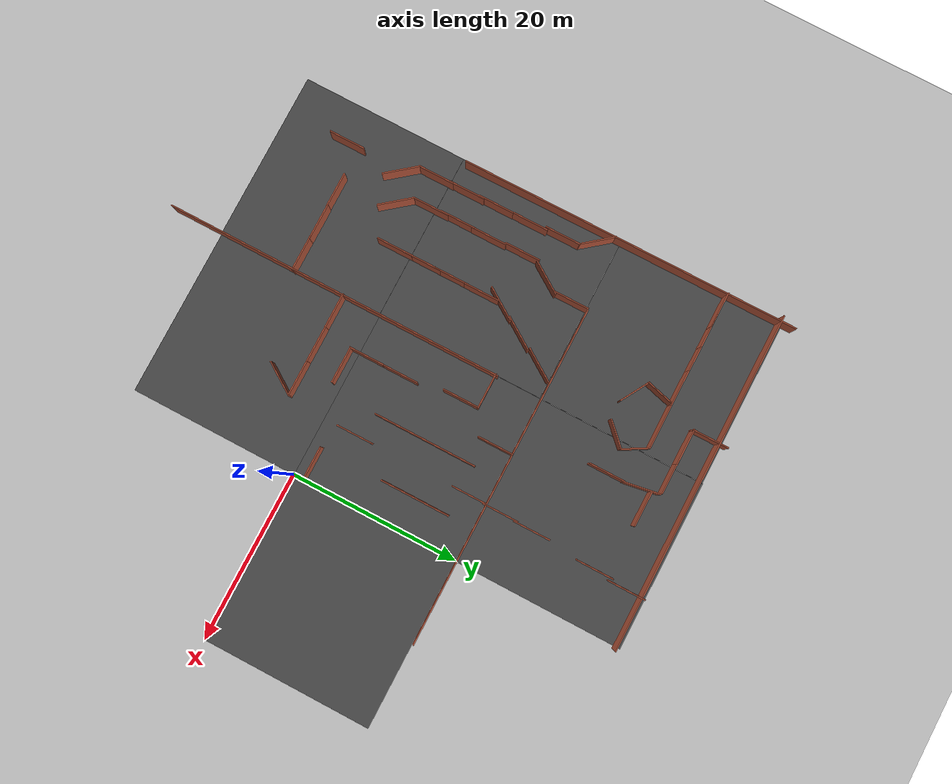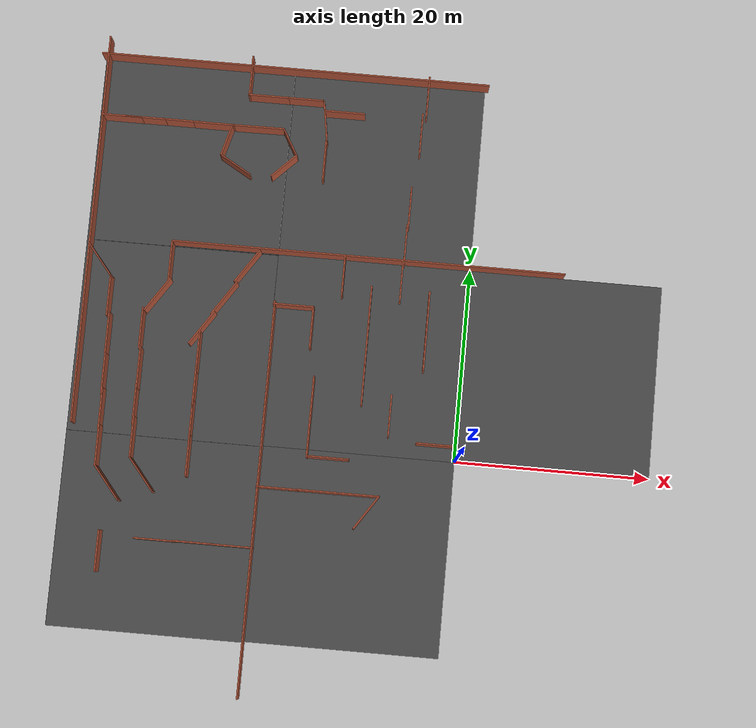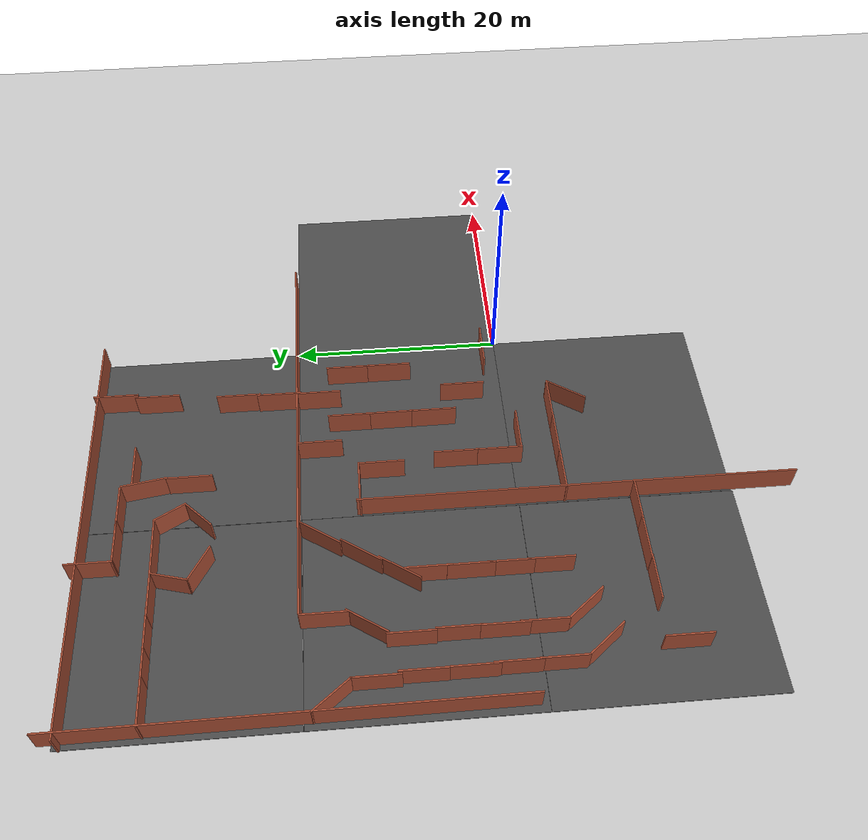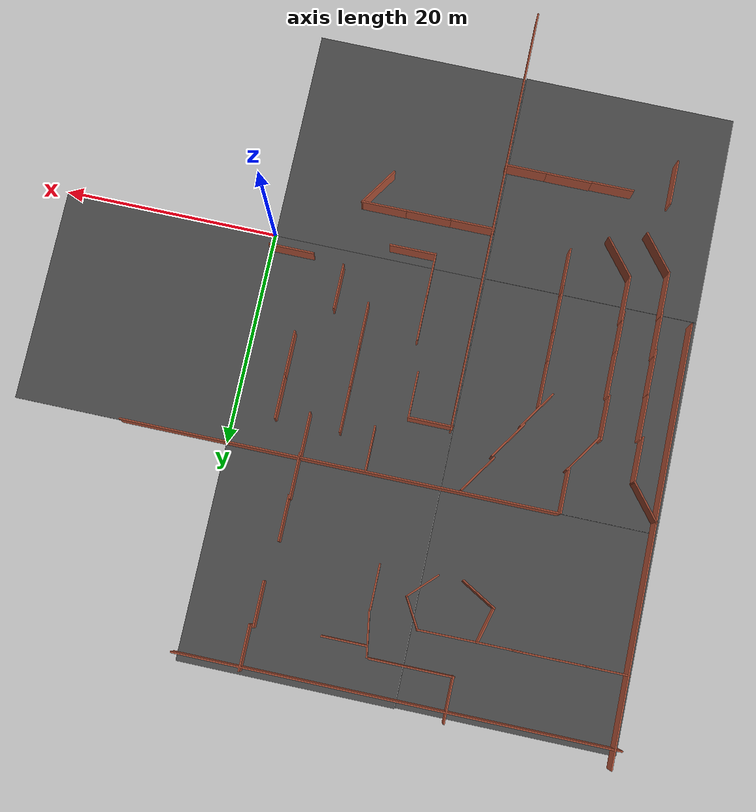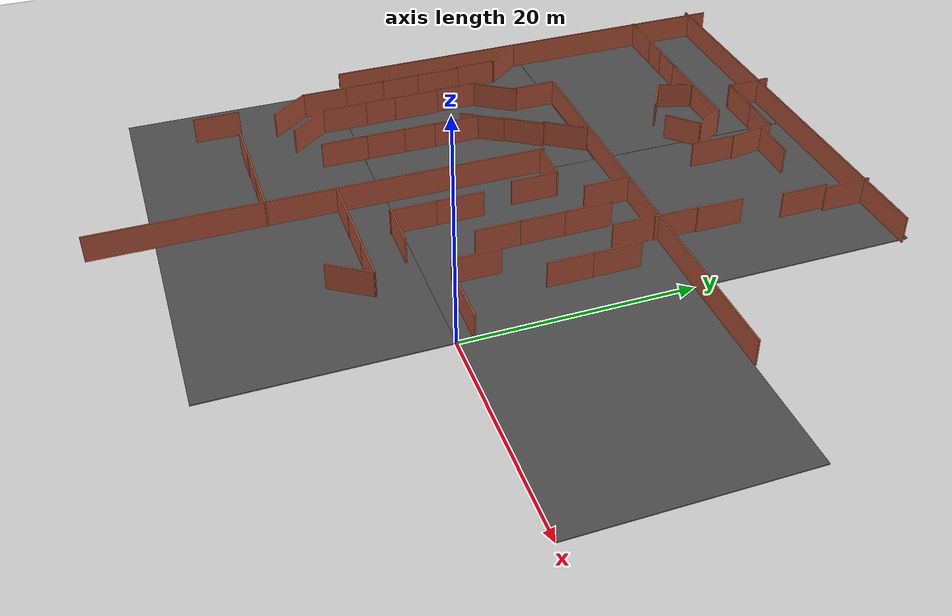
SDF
<sdf version="1.6">
 <world name="default">
  <model name="ground_plane">
   <static>1</static>
   <link name="link">
    <collision name="collision">
     <geometry><plane><normal>0 0 1</normal><size>100 100</size></plane></geometry>
     <surface><friction><ode><mu>100</mu><mu2>50</mu2></ode></friction></surface>
    </collision>
    <visual name="visual">
     <cast_shadows>0</cast_shadows>
     <geometry><plane><normal>0 0 1</normal><size>100 100</size></plane></geometry>
     <material>
      <script><uri>file://media/materials/scripts/gazebo.material</uri><name>Gazebo/Grey</name></script>
     </material>
    </visual>
   </link>
  </model>
  <model name="asphalt_plane">
   <static>1</static>
   <link name="link">
    <collision name="collision"><geometry><box><size>20 20 0.1</size></box></geometry></collision>
    <visual name="visual">
     <cast_shadows>0</cast_shadows>
     <geometry><box><size>20 20 0.1</size></box></geometry>
     <material>
      <script>
       <uri>model://asphalt_plane/materials/scripts</uri>
       <uri>model://asphalt_plane/materials/textures</uri>
       <name>vrc/asphalt</name>
      </script>
     </material>
    </visual>
   </link>
   <pose>10 10 0 0 -0 0</pose>
  </model>
  <model name="asphalt_plane_0">
   <static>1</static>
   <link name="link">
    <collision name="collision"><geometry><box><size>20 20 0.1</size></box></geometry></collision>
    <visual name="visual">
     <cast_shadows>0</cast_shadows>
     <geometry><box><size>20 20 0.1</size></box></geometry>
     <material>
      <script>
       <uri>model://asphalt_plane/materials/scripts</uri>
       <uri>model://asphalt_plane/materials/textures</uri>
       <name>vrc/asphalt</name>
      </script>
     </material>
    </visual>
   </link>
   <pose>-10 10 0 0 -0 0</pose>
  </model>
  <model name="asphalt_plane_1">
   <static>1</static>
   <link name="link">
    <collision name="collision"><geometry><box><size>20 20 0.1</size></box></geometry></collision>
    <visual name="visual">
     <cast_shadows>0</cast_shadows>
     <geometry><box><size>20 20 0.1</size></box></geometry>
     <material>
      <script>
       <uri>model://asphalt_plane/materials/scripts</uri>
       <uri>model://asphalt_plane/materials/textures</uri>
       <name>vrc/asphalt</name>
      </script>
     </material>
    </visual>
   </link>
   <pose>-10 -10 0 0 -0 0</pose>
  </model>
  <model name="longwall_clone">
   <pose>-10.5339 20.0862 0 0 -0 0</pose>
   <link name="Wall_0">
    <collision name="Wall_0_Collision">
     <geometry><box><size>40.5 0.15 2.5</size></box></geometry>
     <pose>0 0 1.25 0 -0 0</pose>
    </collision>
    <visual name="Wall_0_Visual">
     <pose>0 0 1.25 0 -0 0</pose>
     <geometry><box><size>40.5 0.15 2.5</size></box></geometry>
     <material>
      <script><uri>file://media/materials/scripts/gazebo.material</uri><name>Gazebo/Bricks</name></script>
      <ambient>1 1 1 1</ambient>
     </material>
    </visual>
    <pose>1e-06 0 0 0 -0 0</pose>
   </link>
   <static>1</static>
  </model>
  <model name="worlds_1_clone_0_clone_clone_0_clone">
   <pose>-17.8162 14.4688 0 0 0 -1.57092</pose>
   <link name="Wall_0">
    <collision name="Wall_0_Collision">
     <geometry><box><size>4.25 0.15 2.5</size></box></geometry>
     <pose>0 0 1.25 0 -0 0</pose>
    </collision>
    <visual name="Wall_0_Visual">
     <pose>0 0 1.25 0 -0 0</pose>
     <geometry><box><size>4.25 0.15 2.5</size></box></geometry>
     <material>
      <script><uri>file://media/materials/scripts/gazebo.material</uri><name>Gazebo/Bricks</name></script>
      <ambient>1 1 1 1</ambient>
     </material>
    </visual>
    <pose>0 -0 0 0 -0 1.5708</pose>
   </link>
   <static>1</static>
  </model>
  <model name="worlds_1_clone_1">
   <pose>-13 18 0 0 -0 0</pose>
   <link name="Wall_0">
    <collision name="Wall_0_Collision">
     <geometry><box><size>4.25 0.15 2.5</size></box></geometry>
     <pose>0 0 1.25 0 -0 0</pose>
    </collision>
    <visual name="Wall_0_Visual">
     <pose>0 0 1.25 0 -0 0</pose>
     <geometry><box><size>4.25 0.15 2.5</size></box></geometry>
     <material>
      <script><uri>file://media/materials/scripts/gazebo.material</uri><name>Gazebo/Bricks</name></script>
      <ambient>1 1 1 1</ambient>
     </material>
    </visual>
    <pose>0 -0 0 0 -0 1.5708</pose>
   </link>
   <static>1</static>
  </model>
  <model name="worlds_1_clone_1_clone">
   <pose>-15.7734 12.3225 0 0 -0 0</pose>
   <link name="Wall_0">
    <collision name="Wall_0_Collision">
     <geometry><box><size>4.25 0.15 2.5</size></box></geometry>
     <pose>0 0 1.25 0 -0 0</pose>
    </collision>
    <visual name="Wall_0_Visual">
     <pose>0 0 1.25 0 -0 0</pose>
     <geometry><box><size>4.25 0.15 2.5</size></box></geometry>
     <material>
      <script><uri>file://media/materials/scripts/gazebo.material</uri><name>Gazebo/Bricks</name></script>
      <ambient>1 1 1 1</ambient>
     </material>
    </visual>
    <pose>0 -0 0 0 -0 1.5708</pose>
   </link>
   <static>1</static>
  </model>
  <model name="worlds_1_clone_1_clone_clone">
   <pose>-15.0638 5.287 0 0 -0 0</pose>
   <link name="Wall_0">
    <collision name="Wall_0_Collision">
     <geometry><box><size>4.25 0.15 2.5</size></box></geometry>
     <pose>0 0 1.25 0 -0 0</pose>
    </collision>
    <visual name="Wall_0_Visual">
     <pose>0 0 1.25 0 -0 0</pose>
     <geometry><box><size>4.25 0.15 2.5</size></box></geometry>
     <material>
      <script><uri>file://media/materials/scripts/gazebo.material</uri><name>Gazebo/Bricks</name></script>
      <ambient>1 1 1 1</ambient>
     </material>
    </visual>
    <pose>0 -0 0 0 -0 1.5708</pose>
   </link>
   <static>1</static>
  </model>
  <model name="worlds_1_clone_1_clone_clone_0">
   <pose>-15.0769 1.18275 0 0 -0 0</pose>
   <link name="Wall_0">
    <collision name="Wall_0_Collision">
     <geometry><box><size>4.25 0.15 2.5</size></box></geometry>
     <pose>0 0 1.25 0 -0 0</pose>
    </collision>
    <visual name="Wall_0_Visual">
     <pose>0 0 1.25 0 -0 0</pose>
     <geometry><box><size>4.25 0.15 2.5</size></box></geometry>
     <material>
      <script><uri>file://media/materials/scripts/gazebo.material</uri><name>Gazebo/Bricks</name></script>
      <ambient>1 1 1 1</ambient>
     </material>
    </visual>
    <pose>0 -0 0 0 -0 1.5708</pose>
   </link>
   <static>1</static>
  </model>
  <model name="worlds_1_clone_0_clone_clone_0_clone_clone">
   <pose>-17.8054 -4.32089 0 0 0 -1.57092</pose>
   <link name="Wall_0">
    <collision name="Wall_0_Collision">
     <geometry><box><size>4.25 0.15 2.5</size></box></geometry>
     <pose>0 0 1.25 0 -0 0</pose>
    </collision>
    <visual name="Wall_0_Visual">
     <pose>0 0 1.25 0 -0 0</pose>
     <geometry><box><size>4.25 0.15 2.5</size></box></geometry>
     <material>
      <script><uri>file://media/materials/scripts/gazebo.material</uri><name>Gazebo/Bricks</name></script>
      <ambient>1 1 1 1</ambient>
     </material>
    </visual>
    <pose>0 -0 0 0 -0 1.5708</pose>
   </link>
   <static>1</static>
  </model>
  <model name="worlds_1_clone_0_clone_clone_0_clone_clone_0">
   <pose>-13.6699 -4.29855 0 0 0 -1.57092</pose>
   <link name="Wall_0">
    <collision name="Wall_0_Collision">
     <geometry><box><size>4.25 0.15 2.5</size></box></geometry>
     <pose>0 0 1.25 0 -0 0</pose>
    </collision>
    <visual name="Wall_0_Visual">
     <pose>0 0 1.25 0 -0 0</pose>
     <geometry><box><size>4.25 0.15 2.5</size></box></geometry>
     <material>
      <script><uri>file://media/materials/scripts/gazebo.material</uri><name>Gazebo/Bricks</name></script>
      <ambient>1 1 1 1</ambient>
     </material>
    </visual>
    <pose>0 -0 0 0 -0 1.5708</pose>
   </link>
   <static>1</static>
  </model>
  <model name="worlds_1_clone_0_clone_clone_0_clone_clone_1">
   <pose>-9.47339 -4.28892 0 0 0 -1.57092</pose>
   <link name="Wall_0">
    <collision name="Wall_0_Collision">
     <geometry><box><size>4.25 0.15 2.5</size></box></geometry>
     <pose>0 0 1.25 0 -0 0</pose>
    </collision>
    <visual name="Wall_0_Visual">
     <pose>0 0 1.25 0 -0 0</pose>
     <geometry><box><size>4.25 0.15 2.5</size></box></geometry>
     <material>
      <script><uri>file://media/materials/scripts/gazebo.material</uri><name>Gazebo/Bricks</name></script>
      <ambient>1 1 1 1</ambient>
     </material>
    </visual>
    <pose>0 -0 0 0 -0 1.5708</pose>
   </link>
   <static>1</static>
  </model>
  <model name="worlds_1_clone_1_clone_2">
   <pose>-7 18 0 0 -0 0</pose>
   <link name="Wall_0">
    <collision name="Wall_0_Collision">
     <geometry><box><size>4.25 0.15 2.5</size></box></geometry>
     <pose>0 0 1.25 0 -0 0</pose>
    </collision>
    <visual name="Wall_0_Visual">
     <pose>0 0 1.25 0 -0 0</pose>
     <geometry><box><size>4.25 0.15 2.5</size></box></geometry>
     <material>
      <script><uri>file://media/materials/scripts/gazebo.material</uri><name>Gazebo/Bricks</name></script>
      <ambient>1 1 1 1</ambient>
     </material>
    </visual>
    <pose>0 -0 0 0 -0 1.5708</pose>
   </link>
   <static>1</static>
  </model>
  <model name="worlds_1_clone_1_clone_3">
   <pose>-10 15 0 0 -0 0</pose>
   <link name="Wall_0">
    <collision name="Wall_0_Collision">
     <geometry><box><size>4.25 0.15 2.5</size></box></geometry>
     <pose>0 0 1.25 0 -0 0</pose>
    </collision>
    <visual name="Wall_0_Visual">
     <pose>0 0 1.25 0 -0 0</pose>
     <geometry><box><size>4.25 0.15 2.5</size></box></geometry>
     <material>
      <script><uri>file://media/materials/scripts/gazebo.material</uri><name>Gazebo/Bricks</name></script>
      <ambient>1 1 1 1</ambient>
     </material>
    </visual>
    <pose>0 -0 0 0 -0 1.5708</pose>
   </link>
   <static>1</static>
  </model>
  <model name="worlds_1_clone_1_clone_4">
   <pose>-10 11 0 0 -0 0</pose>
   <link name="Wall_0">
    <collision name="Wall_0_Collision">
     <geometry><box><size>4.25 0.15 2.5</size></box></geometry>
     <pose>0 0 1.25 0 -0 0</pose>
    </collision>
    <visual name="Wall_0_Visual">
     <pose>0 0 1.25 0 -0 0</pose>
     <geometry><box><size>4.25 0.15 2.5</size></box></geometry>
     <material>
      <script><uri>file://media/materials/scripts/gazebo.material</uri><name>Gazebo/Bricks</name></script>
      <ambient>1 1 1 1</ambient>
     </material>
    </visual>
    <pose>0 -0 0 0 -0 1.5708</pose>
   </link>
   <static>1</static>
  </model>
  <model name="worlds_1_clone_1_clone_5">
   <pose>-4 15 0 0 -0 0</pose>
   <link name="Wall_0">
    <collision name="Wall_0_Collision">
     <geometry><box><size>4.25 0.15 2.5</size></box></geometry>
     <pose>0 0 1.25 0 -0 0</pose>
    </collision>
    <visual name="Wall_0_Visual">
     <pose>0 0 1.25 0 -0 0</pose>
     <geometry><box><size>4.25 0.15 2.5</size></box></geometry>
     <material>
      <script><uri>file://media/materials/scripts/gazebo.material</uri><name>Gazebo/Bricks</name></script>
      <ambient>1 1 1 1</ambient>
     </material>
    </visual>
    <pose>0 -0 0 0 -0 1.5708</pose>
   </link>
   <static>1</static>
  </model>
  <model name="worlds_1_clone_1_clone_6">
   <pose>-4 11 0 0 -0 0</pose>
   <link name="Wall_0">
    <collision name="Wall_0_Collision">
     <geometry><box><size>4.25 0.15 2.5</size></box></geometry>
     <pose>0 0 1.25 0 -0 0</pose>
    </collision>
    <visual name="Wall_0_Visual">
     <pose>0 0 1.25 0 -0 0</pose>
     <geometry><box><size>4.25 0.15 2.5</size></box></geometry>
     <material>
      <script><uri>file://media/materials/scripts/gazebo.material</uri><name>Gazebo/Bricks</name></script>
      <ambient>1 1 1 1</ambient>
     </material>
    </visual>
    <pose>0 -0 0 0 -0 1.5708</pose>
   </link>
   <static>1</static>
  </model>
  <model name="worlds_1_clone_1_clone_7">
   <pose>-10 7 0 0 -0 0</pose>
   <link name="Wall_0">
    <collision name="Wall_0_Collision">
     <geometry><box><size>4.25 0.15 2.5</size></box></geometry>
     <pose>0 0 1.25 0 -0 0</pose>
    </collision>
    <visual name="Wall_0_Visual">
     <pose>0 0 1.25 0 -0 0</pose>
     <geometry><box><size>4.25 0.15 2.5</size></box></geometry>
     <material>
      <script><uri>file://media/materials/scripts/gazebo.material</uri><name>Gazebo/Bricks</name></script>
      <ambient>1 1 1 1</ambient>
     </material>
    </visual>
    <pose>0 -0 0 0 -0 1.5708</pose>
   </link>
   <static>1</static>
  </model>
  <model name="worlds_1_clone_0_clone_clone_0_clone_clone_0_clone">
   <pose>-12.8938 -0.809745 0 0 0 -1.57092</pose>
   <link name="Wall_0">
    <collision name="Wall_0_Collision">
     <geometry><box><size>4.25 0.15 2.5</size></box></geometry>
     <pose>0 0 1.25 0 -0 0</pose>
    </collision>
    <visual name="Wall_0_Visual">
     <pose>0 0 1.25 0 -0 0</pose>
     <geometry><box><size>4.25 0.15 2.5</size></box></geometry>
     <material>
      <script><uri>file://media/materials/scripts/gazebo.material</uri><name>Gazebo/Bricks</name></script>
      <ambient>1 1 1 1</ambient>
     </material>
    </visual>
    <pose>0 -0 0 0 -0 1.5708</pose>
   </link>
   <static>1</static>
  </model>
  <model name="worlds_1_clone_1_clone_7_clone">
   <pose>-7 4 0 0 -0 0</pose>
   <link name="Wall_0">
    <collision name="Wall_0_Collision">
     <geometry><box><size>4.25 0.15 2.5</size></box></geometry>
     <pose>0 0 1.25 0 -0 0</pose>
    </collision>
    <visual name="Wall_0_Visual">
     <pose>0 0 1.25 0 -0 0</pose>
     <geometry><box><size>4.25 0.15 2.5</size></box></geometry>
     <material>
      <script><uri>file://media/materials/scripts/gazebo.material</uri><name>Gazebo/Bricks</name></script>
      <ambient>1 1 1 1</ambient>
     </material>
    </visual>
    <pose>0 -0 0 0 -0 1.5708</pose>
   </link>
   <static>1</static>
  </model>
  <model name="worlds_1_clone_0_clone_clone_0_clone_clone_0_clone_clone_clone">
   <pose>-2 1.45154 0 0 0 -1.57092</pose>
   <link name="Wall_0">
    <collision name="Wall_0_Collision">
     <geometry><box><size>4.25 0.15 2.5</size></box></geometry>
     <pose>0 0 1.25 0 -0 0</pose>
    </collision>
    <visual name="Wall_0_Visual">
     <pose>0 0 1.25 0 -0 0</pose>
     <geometry><box><size>4.25 0.15 2.5</size></box></geometry>
     <material>
      <script><uri>file://media/materials/scripts/gazebo.material</uri><name>Gazebo/Bricks</name></script>
      <ambient>1 1 1 1</ambient>
     </material>
    </visual>
    <pose>0 -0 0 0 -0 1.5708</pose>
   </link>
   <static>1</static>
  </model>
  <model name="worlds_1_clone_1_clone_7_clone_clone_clone_0">
   <pose>-8.55218 -6 0 0 0 -0.589381</pose>
   <link name="Wall_0">
    <collision name="Wall_0_Collision">
     <geometry><box><size>4.25 0.15 2.5</size></box></geometry>
     <pose>0 0 1.25 0 -0 0</pose>
    </collision>
    <visual name="Wall_0_Visual">
     <pose>0 0 1.25 0 -0 0</pose>
     <geometry><box><size>4.25 0.15 2.5</size></box></geometry>
     <material>
      <script><uri>file://media/materials/scripts/gazebo.material</uri><name>Gazebo/Bricks</name></script>
      <ambient>1 1 1 1</ambient>
     </material>
    </visual>
    <pose>0 -0 0 0 -0 1.5708</pose>
   </link>
   <static>1</static>
  </model>
  <model name="asphalt_plane_3">
   <static>1</static>
   <link name="link">
    <collision name="collision"><geometry><box><size>20 20 0.1</size></box></geometry></collision>
    <visual name="visual">
     <cast_shadows>0</cast_shadows>
     <geometry><box><size>20 20 0.1</size></box></geometry>
     <material>
      <script>
       <uri>model://asphalt_plane/materials/scripts</uri>
       <uri>model://asphalt_plane/materials/textures</uri>
       <name>vrc/asphalt</name>
      </script>
     </material>
    </visual>
   </link>
   <pose>-30.0061 29.9307 0 0 -0 0</pose>
  </model>
  <model name="asphalt_plane_4">
   <static>1</static>
   <link name="link">
    <collision name="collision"><geometry><box><size>20 20 0.1</size></box></geometry></collision>
    <visual name="visual">
     <cast_shadows>0</cast_shadows>
     <geometry><box><size>20 20 0.1</size></box></geometry>
     <material>
      <script>
       <uri>model://asphalt_plane/materials/scripts</uri>
       <uri>model://asphalt_plane/materials/textures</uri>
       <name>vrc/asphalt</name>
      </script>
     </material>
    </visual>
   </link>
   <pose>-30.0112 9.91266 0 0 -0 0</pose>
  </model>
  <model name="asphalt_plane_4_clone_0">
   <static>1</static>
   <link name="link">
    <collision name="collision"><geometry><box><size>20 20 0.1</size></box></geometry></collision>
    <visual name="visual">
     <cast_shadows>0</cast_shadows>
     <geometry><box><size>20 20 0.1</size></box></geometry>
     <material>
      <script>
       <uri>model://asphalt_plane/materials/scripts</uri>
       <uri>model://asphalt_plane/materials/textures</uri>
       <name>vrc/asphalt</name>
      </script>
     </material>
    </visual>
   </link>
   <pose>-30.0137 -10.0993 0 0 -0 0</pose>
  </model>
  <model name="asphalt_plane_4_clone_4">
   <static>1</static>
   <link name="link">
    <collision name="collision"><geometry><box><size>20 20 0.1</size></box></geometry></collision>
    <visual name="visual">
     <cast_shadows>0</cast_shadows>
     <geometry><box><size>20 20 0.1</size></box></geometry>
     <material>
      <script>
       <uri>model://asphalt_plane/materials/scripts</uri>
       <uri>model://asphalt_plane/materials/textures</uri>
       <name>vrc/asphalt</name>
      </script>
     </material>
    </visual>
   </link>
   <pose>-9.97139 30.0265 0 0 -0 0</pose>
  </model>
  <model name="longwall_clone_clone_3_clone_1_clone">
   <pose>-39.3531 20.8304 0 0 0 -1.56602</pose>
   <link name="Wall_0">
    <collision name="Wall_0_Collision">
     <geometry><box><size>40.5 0.15 2.5</size></box></geometry>
     <pose>0 0 1.25 0 -0 0</pose>
    </collision>
    <visual name="Wall_0_Visual">
     <pose>0 0 1.25 0 -0 0</pose>
     <geometry><box><size>40.5 0.15 2.5</size></box></geometry>
     <material>
      <script><uri>file://media/materials/scripts/gazebo.material</uri><name>Gazebo/Bricks</name></script>
      <ambient>1 1 1 1</ambient>
     </material>
    </visual>
    <pose>1e-06 0 0 0 -0 0</pose>
   </link>
   <static>1</static>
  </model>
  <model name="longwall_clone_clone_clone">
   <pose>-19.8784 39.2589 0 0 -0 0</pose>
   <link name="Wall_0">
    <collision name="Wall_0_Collision">
     <geometry><box><size>40.5 0.15 2.5</size></box></geometry>
     <pose>0 0 1.25 0 -0 0</pose>
    </collision>
    <visual name="Wall_0_Visual">
     <pose>0 0 1.25 0 -0 0</pose>
     <geometry><box><size>40.5 0.15 2.5</size></box></geometry>
     <material>
      <script><uri>file://media/materials/scripts/gazebo.material</uri><name>Gazebo/Bricks</name></script>
      <ambient>1 1 1 1</ambient>
     </material>
    </visual>
    <pose>1e-06 0 0 0 -0 0</pose>
   </link>
   <static>1</static>
  </model>
  <model name="longwall_0_clone_clone">
   <pose>-19.77 -5.44658 0 0 0 -1.57092</pose>
   <link name="Wall_0">
    <collision name="Wall_0_Collision">
     <geometry><box><size>40.5 0.15 2.5</size></box></geometry>
     <pose>0 0 1.25 0 -0 0</pose>
    </collision>
    <visual name="Wall_0_Visual">
     <pose>0 0 1.25 0 -0 0</pose>
     <geometry><box><size>40.5 0.15 2.5</size></box></geometry>
     <material>
      <script><uri>file://media/materials/scripts/gazebo.material</uri><name>Gazebo/Bricks</name></script>
      <ambient>1 1 1 1</ambient>
     </material>
    </visual>
    <pose>1e-06 0 0 0 -0 0</pose>
   </link>
   <static>1</static>
  </model>
  <model name="worlds_1_clone_1_clone_clone_0_clone_2">
   <pose>-6.89945 21.7969 0 0 -0 0</pose>
   <link name="Wall_0">
    <collision name="Wall_0_Collision">
     <geometry><box><size>4.25 0.15 2.5</size></box></geometry>
     <pose>0 0 1.25 0 -0 0</pose>
    </collision>
    <visual name="Wall_0_Visual">
     <pose>0 0 1.25 0 -0 0</pose>
     <geometry><box><size>4.25 0.15 2.5</size></box></geometry>
     <material>
      <script><uri>file://media/materials/scripts/gazebo.material</uri><name>Gazebo/Bricks</name></script>
      <ambient>1 1 1 1</ambient>
     </material>
    </visual>
    <pose>0 -0 0 0 -0 1.5708</pose>
   </link>
   <static>1</static>
  </model>
  <model name="worlds_1_clone_1_clone_clone_0_clone_3">
   <pose>-6.77449 25.6871 0 0 -0 0</pose>
   <link name="Wall_0">
    <collision name="Wall_0_Collision">
     <geometry><box><size>4.25 0.15 2.5</size></box></geometry>
     <pose>0 0 1.25 0 -0 0</pose>
    </collision>
    <visual name="Wall_0_Visual">
     <pose>0 0 1.25 0 -0 0</pose>
     <geometry><box><size>4.25 0.15 2.5</size></box></geometry>
     <material>
      <script><uri>file://media/materials/scripts/gazebo.material</uri><name>Gazebo/Bricks</name></script>
      <ambient>1 1 1 1</ambient>
     </material>
    </visual>
    <pose>0 -0 0 0 -0 1.5708</pose>
   </link>
   <static>1</static>
  </model>
  <model name="worlds_1_clone_1_clone_clone_0_clone_5">
   <pose>-6.26626 33.5502 0 0 -0 0</pose>
   <link name="Wall_0">
    <collision name="Wall_0_Collision">
     <geometry><box><size>4.25 0.15 2.5</size></box></geometry>
     <pose>0 0 1.25 0 -0 0</pose>
    </collision>
    <visual name="Wall_0_Visual">
     <pose>0 0 1.25 0 -0 0</pose>
     <geometry><box><size>4.25 0.15 2.5</size></box></geometry>
     <material>
      <script><uri>file://media/materials/scripts/gazebo.material</uri><name>Gazebo/Bricks</name></script>
      <ambient>1 1 1 1</ambient>
     </material>
    </visual>
    <pose>0 -0 0 0 -0 1.5708</pose>
   </link>
   <static>1</static>
  </model>
  <model name="worlds_1_clone_1_clone_clone_0_clone_6">
   <pose>-5.89339 37.5337 0 0 -0 0</pose>
   <link name="Wall_0">
    <collision name="Wall_0_Collision">
     <geometry><box><size>4.25 0.15 2.5</size></box></geometry>
     <pose>0 0 1.25 0 -0 0</pose>
    </collision>
    <visual name="Wall_0_Visual">
     <pose>0 0 1.25 0 -0 0</pose>
     <geometry><box><size>4.25 0.15 2.5</size></box></geometry>
     <material>
      <script><uri>file://media/materials/scripts/gazebo.material</uri><name>Gazebo/Bricks</name></script>
      <ambient>1 1 1 1</ambient>
     </material>
    </visual>
    <pose>0 -0 0 0 -0 1.5708</pose>
   </link>
   <static>1</static>
  </model>
  <model name="room1_clone">
   <pose>-22.8484 30.2693 0 0 -0 0</pose>
   <link name="Wall_11">
    <collision name="Wall_11_Collision">
     <geometry><box><size>3.25 0.15 2.5</size></box></geometry>
     <pose>0 0 1.25 0 -0 0</pose>
    </collision>
    <visual name="Wall_11_Visual">
     <pose>0 0 1.25 0 -0 0</pose>
     <geometry><box><size>3.25 0.15 2.5</size></box></geometry>
     <material>
      <script><uri>file://media/materials/scripts/gazebo.material</uri><name>Gazebo/Bricks</name></script>
      <ambient>1 1 1 1</ambient>
     </material>
    </visual>
    <pose>3.12132 1.19483 0 0 0 -1.0472</pose>
   </link>
   <link name="Wall_12">
    <collision name="Wall_12_Collision">
     <geometry><box><size>3.5 0.15 2.5</size></box></geometry>
     <pose>0 0 1.25 0 -0 0</pose>
    </collision>
    <visual name="Wall_12_Visual">
     <pose>0 0 1.25 0 -0 0</pose>
     <geometry><box><size>3.5 0.15 2.5</size></box></geometry>
     <material>
      <script><uri>file://media/materials/scripts/gazebo.material</uri><name>Gazebo/Bricks</name></script>
      <ambient>1 1 1 1</ambient>
     </material>
    </visual>
    <pose>2.71192 -1.33192 0 0 0 -2.35619</pose>
   </link>
   <link name="Wall_7">
    <collision name="Wall_7_Collision">
     <geometry><box><size>5.52935 0.15 2.5</size></box></geometry>
     <pose>0 0 1.25 0 -0 0</pose>
    </collision>
    <visual name="Wall_7_Visual">
     <pose>0 0 1.25 0 -0 0</pose>
     <geometry><box><size>5.52935 0.15 2.5</size></box></geometry>
     <material>
      <script><uri>file://media/materials/scripts/gazebo.material</uri><name>Gazebo/Bricks</name></script>
      <ambient>1 1 1 1</ambient>
     </material>
    </visual>
    <pose>-0.343285 2.51793 0 0 0 -3.13444</pose>
   </link>
   <link name="Wall_8">
    <collision name="Wall_8_Collision">
     <geometry><box><size>3.5 0.15 2.5</size></box></geometry>
     <pose>0 0 1.25 0 -0 0</pose>
    </collision>
    <visual name="Wall_8_Visual">
     <pose>0 0 1.25 0 -0 0</pose>
     <geometry><box><size>3.5 0.15 2.5</size></box></geometry>
     <material>
      <script><uri>file://media/materials/scripts/gazebo.material</uri><name>Gazebo/Bricks</name></script>
      <ambient>1 1 1 1</ambient>
     </material>
    </visual>
    <pose>-3.46641 0.880761 0 0 0 -1.8326</pose>
   </link>
   <link name="Wall_9">
    <collision name="Wall_9_Collision">
     <geometry><box><size>3.75 0.15 2.5</size></box></geometry>
     <pose>0 0 1.25 0 -0 0</pose>
    </collision>
    <visual name="Wall_9_Visual">
     <pose>0 0 1.25 0 -0 0</pose>
     <geometry><box><size>3.75 0.15 2.5</size></box></geometry>
     <material>
      <script><uri>file://media/materials/scripts/gazebo.material</uri><name>Gazebo/Bricks</name></script>
      <ambient>1 1 1 1</ambient>
     </material>
    </visual>
    <pose>-2.34109 -1.63716 0 0 0 -0.523599</pose>
   </link>
   <static>1</static>
  </model>
  <model name="worlds_1_clone_1_clone_8">
   <pose>-16.2889 34.0174 0 0 -0 0.15582</pose>
   <link name="Wall_0">
    <collision name="Wall_0_Collision">
     <geometry><box><size>4.25 0.15 2.5</size></box></geometry>
     <pose>0 0 1.25 0 -0 0</pose>
    </collision>
    <visual name="Wall_0_Visual">
     <pose>0 0 1.25 0 -0 0</pose>
     <geometry><box><size>4.25 0.15 2.5</size></box></geometry>
     <material>
      <script><uri>file://media/materials/scripts/gazebo.material</uri><name>Gazebo/Bricks</name></script>
      <ambient>1 1 1 1</ambient>
     </material>
    </visual>
    <pose>0 -0 0 0 -0 1.5708</pose>
   </link>
   <static>1</static>
  </model>
  <model name="worlds_1_clone_1_clone_9">
   <pose>-16.0379 29.9467 0 0 -0 0</pose>
   <link name="Wall_0">
    <collision name="Wall_0_Collision">
     <geometry><box><size>4.25 0.15 2.5</size></box></geometry>
     <pose>0 0 1.25 0 -0 0</pose>
    </collision>
    <visual name="Wall_0_Visual">
     <pose>0 0 1.25 0 -0 0</pose>
     <geometry><box><size>4.25 0.15 2.5</size></box></geometry>
     <material>
      <script><uri>file://media/materials/scripts/gazebo.material</uri><name>Gazebo/Bricks</name></script>
      <ambient>1 1 1 1</ambient>
     </material>
    </visual>
    <pose>0 -0 0 0 -0 1.5708</pose>
   </link>
   <static>1</static>
  </model>
  <model name="worlds_1_clone_1_clone_8_clone">
   <pose>-24.4187 38.1724 0 0 -0 0</pose>
   <link name="Wall_0">
    <collision name="Wall_0_Collision">
     <geometry><box><size>4.25 0.15 2.5</size></box></geometry>
     <pose>0 0 1.25 0 -0 0</pose>
    </collision>
    <visual name="Wall_0_Visual">
     <pose>0 0 1.25 0 -0 0</pose>
     <geometry><box><size>4.25 0.15 2.5</size></box></geometry>
     <material>
      <script><uri>file://media/materials/scripts/gazebo.material</uri><name>Gazebo/Bricks</name></script>
      <ambient>1 1 1 1</ambient>
     </material>
    </visual>
    <pose>0 -0 0 0 -0 1.5708</pose>
   </link>
   <static>1</static>
  </model>
  <model name="worlds_1_clone_0_clone_clone_0_clone_2_clone_0_clone">
   <pose>-22.4091 36.1475 0 0 0 -1.57092</pose>
   <link name="Wall_0">
    <collision name="Wall_0_Collision">
     <geometry><box><size>4.25 0.15 2.5</size></box></geometry>
     <pose>0 0 1.25 0 -0 0</pose>
    </collision>
    <visual name="Wall_0_Visual">
     <pose>0 0 1.25 0 -0 0</pose>
     <geometry><box><size>4.25 0.15 2.5</size></box></geometry>
     <material>
      <script><uri>file://media/materials/scripts/gazebo.material</uri><name>Gazebo/Bricks</name></script>
      <ambient>1 1 1 1</ambient>
     </material>
    </visual>
    <pose>0 -0 0 0 -0 1.5708</pose>
   </link>
   <static>1</static>
  </model>
  <model name="worlds_1_clone_0_clone_clone_0_clone_2_clone_0_clone_0">
   <pose>-18.8382 36.1508 0 0 0 -1.57092</pose>
   <link name="Wall_0">
    <collision name="Wall_0_Collision">
     <geometry><box><size>4.25 0.15 2.5</size></box></geometry>
     <pose>0 0 1.25 0 -0 0</pose>
    </collision>
    <visual name="Wall_0_Visual">
     <pose>0 0 1.25 0 -0 0</pose>
     <geometry><box><size>4.25 0.15 2.5</size></box></geometry>
     <material>
      <script><uri>file://media/materials/scripts/gazebo.material</uri><name>Gazebo/Bricks</name></script>
      <ambient>1 1 1 1</ambient>
     </material>
    </visual>
    <pose>0 -0 0 0 -0 1.5708</pose>
   </link>
   <static>1</static>
  </model>
  <model name="worlds_1_clone_0_clone_clone_0_clone_2_clone_0_clone_1">
   <pose>-14.3884 35.1171 0 0 0 -1.57092</pose>
   <link name="Wall_0">
    <collision name="Wall_0_Collision">
     <geometry><box><size>4.25 0.15 2.5</size></box></geometry>
     <pose>0 0 1.25 0 -0 0</pose>
    </collision>
    <visual name="Wall_0_Visual">
     <pose>0 0 1.25 0 -0 0</pose>
     <geometry><box><size>4.25 0.15 2.5</size></box></geometry>
     <material>
      <script><uri>file://media/materials/scripts/gazebo.material</uri><name>Gazebo/Bricks</name></script>
      <ambient>1 1 1 1</ambient>
     </material>
    </visual>
    <pose>0 -0 0 0 -0 1.5708</pose>
   </link>
   <static>1</static>
  </model>
  <model name="worlds_1_clone_0_clone_clone_0_clone_2_clone_0_clone_clone">
   <pose>-27.8076 32.7667 0 0 0 -1.57092</pose>
   <link name="Wall_0">
    <collision name="Wall_0_Collision">
     <geometry><box><size>4.25 0.15 2.5</size></box></geometry>
     <pose>0 0 1.25 0 -0 0</pose>
    </collision>
    <visual name="Wall_0_Visual">
     <pose>0 0 1.25 0 -0 0</pose>
     <geometry><box><size>4.25 0.15 2.5</size></box></geometry>
     <material>
      <script><uri>file://media/materials/scripts/gazebo.material</uri><name>Gazebo/Bricks</name></script>
      <ambient>1 1 1 1</ambient>
     </material>
    </visual>
    <pose>0 -0 0 0 -0 1.5708</pose>
   </link>
   <static>1</static>
  </model>
  <model name="worlds_1_clone_0_clone_clone_0_clone_2_clone_0_clone_clone_0">
   <pose>-31.1354 32.7841 0 0 0 -1.57092</pose>
   <link name="Wall_0">
    <collision name="Wall_0_Collision">
     <geometry><box><size>4.25 0.15 2.5</size></box></geometry>
     <pose>0 0 1.25 0 -0 0</pose>
    </collision>
    <visual name="Wall_0_Visual">
     <pose>0 0 1.25 0 -0 0</pose>
     <geometry><box><size>4.25 0.15 2.5</size></box></geometry>
     <material>
      <script><uri>file://media/materials/scripts/gazebo.material</uri><name>Gazebo/Bricks</name></script>
      <ambient>1 1 1 1</ambient>
     </material>
    </visual>
    <pose>0 -0 0 0 -0 1.5708</pose>
   </link>
   <static>1</static>
  </model>
  <model name="worlds_1_clone_0_clone_clone_0_clone_2_clone_0_clone_clone_1">
   <pose>-34.9614 32.7706 0 0 0 -1.57092</pose>
   <link name="Wall_0">
    <collision name="Wall_0_Collision">
     <geometry><box><size>4.25 0.15 2.5</size></box></geometry>
     <pose>0 0 1.25 0 -0 0</pose>
    </collision>
    <visual name="Wall_0_Visual">
     <pose>0 0 1.25 0 -0 0</pose>
     <geometry><box><size>4.25 0.15 2.5</size></box></geometry>
     <material>
      <script><uri>file://media/materials/scripts/gazebo.material</uri><name>Gazebo/Bricks</name></script>
      <ambient>1 1 1 1</ambient>
     </material>
    </visual>
    <pose>0 -0 0 0 -0 1.5708</pose>
   </link>
   <static>1</static>
  </model>
  <model name="worlds_1_clone_0_clone_clone_0_clone_2_clone_0_clone_clone_2">
   <pose>-37.44 32.7639 0 0 0 -1.57092</pose>
   <link name="Wall_0">
    <collision name="Wall_0_Collision">
     <geometry><box><size>4.25 0.15 2.5</size></box></geometry>
     <pose>0 0 1.25 0 -0 0</pose>
    </collision>
    <visual name="Wall_0_Visual">
     <pose>0 0 1.25 0 -0 0</pose>
     <geometry><box><size>4.25 0.15 2.5</size></box></geometry>
     <material>
      <script><uri>file://media/materials/scripts/gazebo.material</uri><name>Gazebo/Bricks</name></script>
      <ambient>1 1 1 1</ambient>
     </material>
    </visual>
    <pose>0 -0 0 0 -0 1.5708</pose>
   </link>
   <static>1</static>
  </model>
  <model name="worlds_1_clone_1_clone_7_clone_clone_clone_0_clone">
   <pose>-22.9241 18.1315 0 0 0 -0.589381</pose>
   <link name="Wall_0">
    <collision name="Wall_0_Collision">
     <geometry><box><size>4.25 0.15 2.5</size></box></geometry>
     <pose>0 0 1.25 0 -0 0</pose>
    </collision>
    <visual name="Wall_0_Visual">
     <pose>0 0 1.25 0 -0 0</pose>
     <geometry><box><size>4.25 0.15 2.5</size></box></geometry>
     <material>
      <script><uri>file://media/materials/scripts/gazebo.material</uri><name>Gazebo/Bricks</name></script>
      <ambient>1 1 1 1</ambient>
     </material>
    </visual>
    <pose>0 -0 0 0 -0 1.5708</pose>
   </link>
   <static>1</static>
  </model>
  <model name="worlds_1_clone_1_clone_7_clone_clone_clone_0_clone_0">
   <pose>-24.9872 14.5986 0 0 0 -0.589381</pose>
   <link name="Wall_0">
    <collision name="Wall_0_Collision">
     <geometry><box><size>4.25 0.15 2.5</size></box></geometry>
     <pose>0 0 1.25 0 -0 0</pose>
    </collision>
    <visual name="Wall_0_Visual">
     <pose>0 0 1.25 0 -0 0</pose>
     <geometry><box><size>4.25 0.15 2.5</size></box></geometry>
     <material>
      <script><uri>file://media/materials/scripts/gazebo.material</uri><name>Gazebo/Bricks</name></script>
      <ambient>1 1 1 1</ambient>
     </material>
    </visual>
    <pose>0 -0 0 0 -0 1.5708</pose>
   </link>
   <static>1</static>
  </model>
  <model name="worlds_1_clone_1_clone_7_clone_clone_clone_0_clone_1">
   <pose>-26.9717 11.3717 0 0 0 -0.589381</pose>
   <link name="Wall_0">
    <collision name="Wall_0_Collision">
     <geometry><box><size>4.25 0.15 2.5</size></box></geometry>
     <pose>0 0 1.25 0 -0 0</pose>
    </collision>
    <visual name="Wall_0_Visual">
     <pose>0 0 1.25 0 -0 0</pose>
     <geometry><box><size>4.25 0.15 2.5</size></box></geometry>
     <material>
      <script><uri>file://media/materials/scripts/gazebo.material</uri><name>Gazebo/Bricks</name></script>
      <ambient>1 1 1 1</ambient>
     </material>
    </visual>
    <pose>0 -0 0 0 -0 1.5708</pose>
   </link>
   <static>1</static>
  </model>
  <model name="worlds_1_clone_1_clone_clone_0_clone_4">
   <pose>-27.1144 8.87097 0 0 -0 0</pose>
   <link name="Wall_0">
    <collision name="Wall_0_Collision">
     <geometry><box><size>4.25 0.15 2.5</size></box></geometry>
     <pose>0 0 1.25 0 -0 0</pose>
    </collision>
    <visual name="Wall_0_Visual">
     <pose>0 0 1.25 0 -0 0</pose>
     <geometry><box><size>4.25 0.15 2.5</size></box></geometry>
     <material>
      <script><uri>file://media/materials/scripts/gazebo.material</uri><name>Gazebo/Bricks</name></script>
      <ambient>1 1 1 1</ambient>
     </material>
    </visual>
    <pose>0 -0 0 0 -0 1.5708</pose>
   </link>
   <static>1</static>
  </model>
  <model name="worlds_1_clone_1_clone_clone_0_clone_7">
   <pose>-27.1304 5.14861 0 0 -0 0</pose>
   <link name="Wall_0">
    <collision name="Wall_0_Collision">
     <geometry><box><size>4.25 0.15 2.5</size></box></geometry>
     <pose>0 0 1.25 0 -0 0</pose>
    </collision>
    <visual name="Wall_0_Visual">
     <pose>0 0 1.25 0 -0 0</pose>
     <geometry><box><size>4.25 0.15 2.5</size></box></geometry>
     <material>
      <script><uri>file://media/materials/scripts/gazebo.material</uri><name>Gazebo/Bricks</name></script>
      <ambient>1 1 1 1</ambient>
     </material>
    </visual>
    <pose>0 -0 0 0 -0 1.5708</pose>
   </link>
   <static>1</static>
  </model>
  <model name="worlds_1_clone_1_clone_clone_0_clone_8">
   <pose>-27.1244 1.69912 0 0 -0 0</pose>
   <link name="Wall_0">
    <collision name="Wall_0_Collision">
     <geometry><box><size>4.25 0.15 2.5</size></box></geometry>
     <pose>0 0 1.25 0 -0 0</pose>
    </collision>
    <visual name="Wall_0_Visual">
     <pose>0 0 1.25 0 -0 0</pose>
     <geometry><box><size>4.25 0.15 2.5</size></box></geometry>
     <material>
      <script><uri>file://media/materials/scripts/gazebo.material</uri><name>Gazebo/Bricks</name></script>
      <ambient>1 1 1 1</ambient>
     </material>
    </visual>
    <pose>0 -0 0 0 -0 1.5708</pose>
   </link>
   <static>1</static>
  </model>
  <model name="worlds_1_clone_1_clone_clone_0_clone_9">
   <pose>-27.1131 -1.83833 0 0 -0 0</pose>
   <link name="Wall_0">
    <collision name="Wall_0_Collision">
     <geometry><box><size>4.25 0.15 2.5</size></box></geometry>
     <pose>0 0 1.25 0 -0 0</pose>
    </collision>
    <visual name="Wall_0_Visual">
     <pose>0 0 1.25 0 -0 0</pose>
     <geometry><box><size>4.25 0.15 2.5</size></box></geometry>
     <material>
      <script><uri>file://media/materials/scripts/gazebo.material</uri><name>Gazebo/Bricks</name></script>
      <ambient>1 1 1 1</ambient>
     </material>
    </visual>
    <pose>0 -0 0 0 -0 1.5708</pose>
   </link>
   <static>1</static>
  </model>
  <model name="worlds_2_clone_clone">
   <pose>-38.1023 17.5216 0 0 -0 0.67691</pose>
   <link name="Wall_0">
    <collision name="Wall_0_Collision">
     <geometry><box><size>4.25 0.15 2.5</size></box></geometry>
     <pose>0 0 1.25 0 -0 0</pose>
    </collision>
    <visual name="Wall_0_Visual">
     <pose>0 0 1.25 0 -0 0</pose>
     <geometry><box><size>4.25 0.15 2.5</size></box></geometry>
     <material>
      <script><uri>file://media/materials/scripts/gazebo.material</uri><name>Gazebo/Bricks</name></script>
      <ambient>1 1 1 1</ambient>
     </material>
    </visual>
    <pose>0 -0 0 0 -0 1.5708</pose>
   </link>
   <static>1</static>
  </model>
  <model name="worlds_1_clone_1_clone_clone_0_clone_4_clone">
   <pose>-30.8677 17.9796 0 0 -0 0</pose>
   <link name="Wall_0">
    <collision name="Wall_0_Collision">
     <geometry><box><size>4.25 0.15 2.5</size></box></geometry>
     <pose>0 0 1.25 0 -0 0</pose>
    </collision>
    <visual name="Wall_0_Visual">
     <pose>0 0 1.25 0 -0 0</pose>
     <geometry><box><size>4.25 0.15 2.5</size></box></geometry>
     <material>
      <script><uri>file://media/materials/scripts/gazebo.material</uri><name>Gazebo/Bricks</name></script>
      <ambient>1 1 1 1</ambient>
     </material>
    </visual>
    <pose>0 -0 0 0 -0 1.5708</pose>
   </link>
   <static>1</static>
  </model>
  <model name="worlds_1_clone_1_clone_7_clone_clone_clone_0_clone_1_clone">
   <pose>-31.8323 14.4063 0 0 0 -0.589381</pose>
   <link name="Wall_0">
    <collision name="Wall_0_Collision">
     <geometry><box><size>4.25 0.15 2.5</size></box></geometry>
     <pose>0 0 1.25 0 -0 0</pose>
    </collision>
    <visual name="Wall_0_Visual">
     <pose>0 0 1.25 0 -0 0</pose>
     <geometry><box><size>4.25 0.15 2.5</size></box></geometry>
     <material>
      <script><uri>file://media/materials/scripts/gazebo.material</uri><name>Gazebo/Bricks</name></script>
      <ambient>1 1 1 1</ambient>
     </material>
    </visual>
    <pose>0 -0 0 0 -0 1.5708</pose>
   </link>
   <static>1</static>
  </model>
  <model name="worlds_1_clone_1_clone_clone_0_clone_4_clone_clone">
   <pose>-36.8093 13.8776 0 0 -0 0</pose>
   <link name="Wall_0">
    <collision name="Wall_0_Collision">
     <geometry><box><size>4.25 0.15 2.5</size></box></geometry>
     <pose>0 0 1.25 0 -0 0</pose>
    </collision>
    <visual name="Wall_0_Visual">
     <pose>0 0 1.25 0 -0 0</pose>
     <geometry><box><size>4.25 0.15 2.5</size></box></geometry>
     <material>
      <script><uri>file://media/materials/scripts/gazebo.material</uri><name>Gazebo/Bricks</name></script>
      <ambient>1 1 1 1</ambient>
     </material>
    </visual>
    <pose>0 -0 0 0 -0 1.5708</pose>
   </link>
   <static>1</static>
  </model>
  <model name="worlds_1_clone_1_clone_clone_0_clone_4_clone_clone_0">
   <pose>-33.1632 10.7787 0 0 -0 0</pose>
   <link name="Wall_0">
    <collision name="Wall_0_Collision">
     <geometry><box><size>4.25 0.15 2.5</size></box></geometry>
     <pose>0 0 1.25 0 -0 0</pose>
    </collision>
    <visual name="Wall_0_Visual">
     <pose>0 0 1.25 0 -0 0</pose>
     <geometry><box><size>4.25 0.15 2.5</size></box></geometry>
     <material>
      <script><uri>file://media/materials/scripts/gazebo.material</uri><name>Gazebo/Bricks</name></script>
      <ambient>1 1 1 1</ambient>
     </material>
    </visual>
    <pose>0 -0 0 0 -0 1.5708</pose>
   </link>
   <static>1</static>
  </model>
  <model name="worlds_1_clone_1_clone_clone_0_clone_4_clone_clone_1">
   <pose>-36.5494 10.0011 0 0 -0 0</pose>
   <link name="Wall_0">
    <collision name="Wall_0_Collision">
     <geometry><box><size>4.25 0.15 2.5</size></box></geometry>
     <pose>0 0 1.25 0 -0 0</pose>
    </collision>
    <visual name="Wall_0_Visual">
     <pose>0 0 1.25 0 -0 0</pose>
     <geometry><box><size>4.25 0.15 2.5</size></box></geometry>
     <material>
      <script><uri>file://media/materials/scripts/gazebo.material</uri><name>Gazebo/Bricks</name></script>
      <ambient>1 1 1 1</ambient>
     </material>
    </visual>
    <pose>0 -0 0 0 -0 1.5708</pose>
   </link>
   <static>1</static>
  </model>
  <model name="worlds_1_clone_1_clone_clone_0_clone_4_clone_clone_2">
   <pose>-36.5144 5.76801 0 0 -0 0</pose>
   <link name="Wall_0">
    <collision name="Wall_0_Collision">
     <geometry><box><size>4.25 0.15 2.5</size></box></geometry>
     <pose>0 0 1.25 0 -0 0</pose>
    </collision>
    <visual name="Wall_0_Visual">
     <pose>0 0 1.25 0 -0 0</pose>
     <geometry><box><size>4.25 0.15 2.5</size></box></geometry>
     <material>
      <script><uri>file://media/materials/scripts/gazebo.material</uri><name>Gazebo/Bricks</name></script>
      <ambient>1 1 1 1</ambient>
     </material>
    </visual>
    <pose>0 -0 0 0 -0 1.5708</pose>
   </link>
   <static>1</static>
  </model>
  <model name="worlds_1_clone_1_clone_clone_0_clone_4_clone_clone_3">
   <pose>-33.0013 6.69062 0 0 -0 0</pose>
   <link name="Wall_0">
    <collision name="Wall_0_Collision">
     <geometry><box><size>4.25 0.15 2.5</size></box></geometry>
     <pose>0 0 1.25 0 -0 0</pose>
    </collision>
    <visual name="Wall_0_Visual">
     <pose>0 0 1.25 0 -0 0</pose>
     <geometry><box><size>4.25 0.15 2.5</size></box></geometry>
     <material>
      <script><uri>file://media/materials/scripts/gazebo.material</uri><name>Gazebo/Bricks</name></script>
      <ambient>1 1 1 1</ambient>
     </material>
    </visual>
    <pose>0 -0 0 0 -0 1.5708</pose>
   </link>
   <static>1</static>
  </model>
  <model name="worlds_1_clone_1_clone_clone_0_clone_4_clone_clone_4">
   <pose>-33.0271 2.8787 0 0 -0 0</pose>
   <link name="Wall_0">
    <collision name="Wall_0_Collision">
     <geometry><box><size>4.25 0.15 2.5</size></box></geometry>
     <pose>0 0 1.25 0 -0 0</pose>
    </collision>
    <visual name="Wall_0_Visual">
     <pose>0 0 1.25 0 -0 0</pose>
     <geometry><box><size>4.25 0.15 2.5</size></box></geometry>
     <material>
      <script><uri>file://media/materials/scripts/gazebo.material</uri><name>Gazebo/Bricks</name></script>
      <ambient>1 1 1 1</ambient>
     </material>
    </visual>
    <pose>0 -0 0 0 -0 1.5708</pose>
   </link>
   <static>1</static>
  </model>
  <model name="worlds_1_clone_1_clone_clone_0_clone_4_clone_clone_5">
   <pose>-32.9494 -0.430921 0 0 -0 0</pose>
   <link name="Wall_0">
    <collision name="Wall_0_Collision">
     <geometry><box><size>4.25 0.15 2.5</size></box></geometry>
     <pose>0 0 1.25 0 -0 0</pose>
    </collision>
    <visual name="Wall_0_Visual">
     <pose>0 0 1.25 0 -0 0</pose>
     <geometry><box><size>4.25 0.15 2.5</size></box></geometry>
     <material>
      <script><uri>file://media/materials/scripts/gazebo.material</uri><name>Gazebo/Bricks</name></script>
      <ambient>1 1 1 1</ambient>
     </material>
    </visual>
    <pose>0 -0 0 0 -0 1.5708</pose>
   </link>
   <static>1</static>
  </model>
  <model name="worlds_1_clone_1_clone_clone_0_clone_4_clone_clone_6">
   <pose>-36.4185 2.2166 0 0 -0 0</pose>
   <link name="Wall_0">
    <collision name="Wall_0_Collision">
     <geometry><box><size>4.25 0.15 2.5</size></box></geometry>
     <pose>0 0 1.25 0 -0 0</pose>
    </collision>
    <visual name="Wall_0_Visual">
     <pose>0 0 1.25 0 -0 0</pose>
     <geometry><box><size>4.25 0.15 2.5</size></box></geometry>
     <material>
      <script><uri>file://media/materials/scripts/gazebo.material</uri><name>Gazebo/Bricks</name></script>
      <ambient>1 1 1 1</ambient>
     </material>
    </visual>
    <pose>0 -0 0 0 -0 1.5708</pose>
   </link>
   <static>1</static>
  </model>
  <model name="worlds_2_clone_clone_clone">
   <pose>-31.6381 -4.13247 0 0 -0 0.67691</pose>
   <link name="Wall_0">
    <collision name="Wall_0_Collision">
     <geometry><box><size>4.25 0.15 2.5</size></box></geometry>
     <pose>0 0 1.25 0 -0 0</pose>
    </collision>
    <visual name="Wall_0_Visual">
     <pose>0 0 1.25 0 -0 0</pose>
     <geometry><box><size>4.25 0.15 2.5</size></box></geometry>
     <material>
      <script><uri>file://media/materials/scripts/gazebo.material</uri><name>Gazebo/Bricks</name></script>
      <ambient>1 1 1 1</ambient>
     </material>
    </visual>
    <pose>0 -0 0 0 -0 1.5708</pose>
   </link>
   <static>1</static>
  </model>
  <model name="worlds_1_clone_1_clone_clone_0_clone_4_clone_clone_5_clone">
   <pose>-36.3714 -1.57222 0 0 -0 0</pose>
   <link name="Wall_0">
    <collision name="Wall_0_Collision">
     <geometry><box><size>4.25 0.15 2.5</size></box></geometry>
     <pose>0 0 1.25 0 -0 0</pose>
    </collision>
    <visual name="Wall_0_Visual">
     <pose>0 0 1.25 0 -0 0</pose>
     <geometry><box><size>4.25 0.15 2.5</size></box></geometry>
     <material>
      <script><uri>file://media/materials/scripts/gazebo.material</uri><name>Gazebo/Bricks</name></script>
      <ambient>1 1 1 1</ambient>
     </material>
    </visual>
    <pose>0 -0 0 0 -0 1.5708</pose>
   </link>
   <static>1</static>
  </model>
  <model name="worlds_2_clone_clone_clone_clone">
   <pose>-35.0202 -5.29759 0 0 -0 0.67691</pose>
   <link name="Wall_0">
    <collision name="Wall_0_Collision">
     <geometry><box><size>4.25 0.15 2.5</size></box></geometry>
     <pose>0 0 1.25 0 -0 0</pose>
    </collision>
    <visual name="Wall_0_Visual">
     <pose>0 0 1.25 0 -0 0</pose>
     <geometry><box><size>4.25 0.15 2.5</size></box></geometry>
     <material>
      <script><uri>file://media/materials/scripts/gazebo.material</uri><name>Gazebo/Bricks</name></script>
      <ambient>1 1 1 1</ambient>
     </material>
    </visual>
    <pose>0 -0 0 0 -0 1.5708</pose>
   </link>
   <static>1</static>
  </model>
  <model name="worlds_1_clone_0_clone_clone_0_clone_clone_clone_4">
   <pose>-21.7635 -10.5389 0 0 0 -1.57092</pose>
   <link name="Wall_0">
    <collision name="Wall_0_Collision">
     <geometry><box><size>4.25 0.15 2.5</size></box></geometry>
     <pose>0 0 1.25 0 -0 0</pose>
    </collision>
    <visual name="Wall_0_Visual">
     <pose>0 0 1.25 0 -0 0</pose>
     <geometry><box><size>4.25 0.15 2.5</size></box></geometry>
     <material>
      <script><uri>file://media/materials/scripts/gazebo.material</uri><name>Gazebo/Bricks</name></script>
      <ambient>1 1 1 1</ambient>
     </material>
    </visual>
    <pose>0 -0 0 0 -0 1.5708</pose>
   </link>
   <static>1</static>
  </model>
  <model name="worlds_1_clone_0_clone_clone_0_clone_clone_clone_5">
   <pose>-25.6804 -10.5311 0 0 0 -1.57092</pose>
   <link name="Wall_0">
    <collision name="Wall_0_Collision">
     <geometry><box><size>4.25 0.15 2.5</size></box></geometry>
     <pose>0 0 1.25 0 -0 0</pose>
    </collision>
    <visual name="Wall_0_Visual">
     <pose>0 0 1.25 0 -0 0</pose>
     <geometry><box><size>4.25 0.15 2.5</size></box></geometry>
     <material>
      <script><uri>file://media/materials/scripts/gazebo.material</uri><name>Gazebo/Bricks</name></script>
      <ambient>1 1 1 1</ambient>
     </material>
    </visual>
    <pose>0 -0 0 0 -0 1.5708</pose>
   </link>
   <static>1</static>
  </model>
  <model name="worlds_1_clone_0_clone_clone_0_clone_clone_clone_6">
   <pose>-29.6635 -10.5771 0 0 0 -1.57092</pose>
   <link name="Wall_0">
    <collision name="Wall_0_Collision">
     <geometry><box><size>4.25 0.15 2.5</size></box></geometry>
     <pose>0 0 1.25 0 -0 0</pose>
    </collision>
    <visual name="Wall_0_Visual">
     <pose>0 0 1.25 0 -0 0</pose>
     <geometry><box><size>4.25 0.15 2.5</size></box></geometry>
     <material>
      <script><uri>file://media/materials/scripts/gazebo.material</uri><name>Gazebo/Bricks</name></script>
      <ambient>1 1 1 1</ambient>
     </material>
    </visual>
    <pose>0 -0 0 0 -0 1.5708</pose>
   </link>
   <static>1</static>
  </model>
  <model name="worlds_1_clone_1_clone_clone_0_clone_9_clone">
   <pose>-35.274 -12.1728 0 0 -0 0</pose>
   <link name="Wall_0">
    <collision name="Wall_0_Collision">
     <geometry><box><size>4.25 0.15 2.5</size></box></geometry>
     <pose>0 0 1.25 0 -0 0</pose>
    </collision>
    <visual name="Wall_0_Visual">
     <pose>0 0 1.25 0 -0 0</pose>
     <geometry><box><size>4.25 0.15 2.5</size></box></geometry>
     <material>
      <script><uri>file://media/materials/scripts/gazebo.material</uri><name>Gazebo/Bricks</name></script>
      <ambient>1 1 1 1</ambient>
     </material>
    </visual>
    <pose>0 -0 0 0 -0 1.5708</pose>
   </link>
   <static>1</static>
  </model>
 </world>
</sdf>
